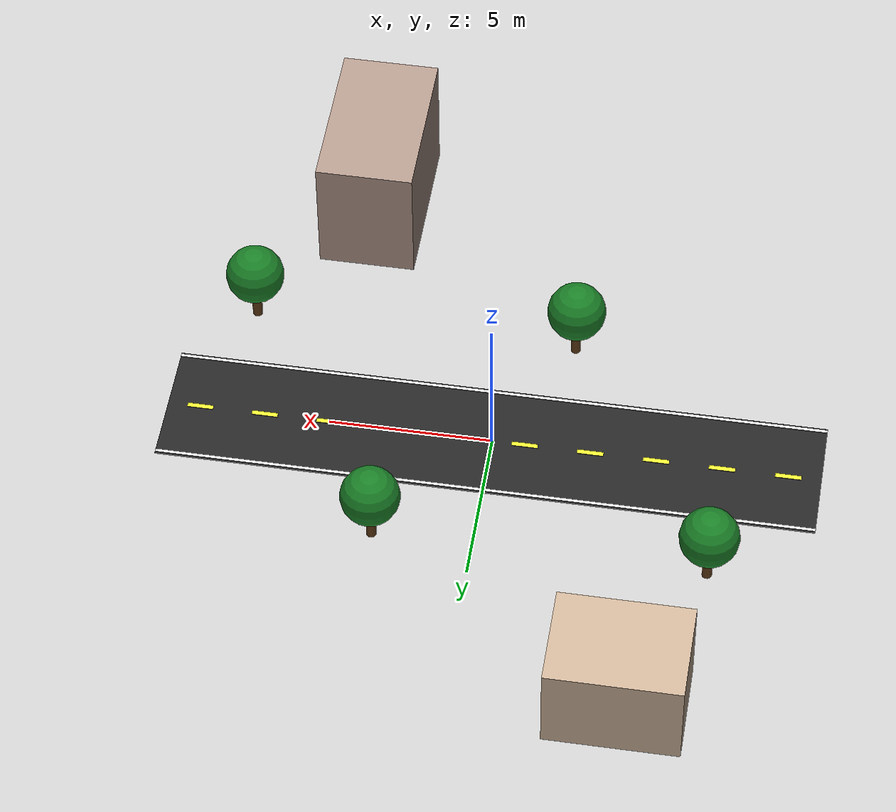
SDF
<sdf version="1.6">
 <world name="road_world">
  <include><uri>model://sun</uri></include>
  <include><uri>model://ground_plane</uri></include>
  <plugin name="gazebo_ros_state" filename="libgazebo_ros_state.so">
   <ros><namespace>/gazebo</namespace></ros>
  </plugin>
  <model name="road">
   <static>true</static>
   <link name="road_link">
    <visual name="road_visual">
     <geometry><box><size>20 4 0.02</size></box></geometry>
     <material><ambient>0.15 0.15 0.15 1</ambient><diffuse>0.15 0.15 0.15 1</diffuse></material>
    </visual>
    <collision name="road_collision"><geometry><box><size>20 4 0.02</size></box></geometry></collision>
   </link>
   <pose>0 0 0.01 0 0 0</pose>
   <model name="road_edge_left">
    <static>true</static>
    <link name="link">
     <visual name="visual">
      <geometry><box><size>20 0.1 0.03</size></box></geometry>
      <material><ambient>0.9 0.9 0.9 1</ambient><diffuse>0.9 0.9 0.9 1</diffuse></material>
     </visual>
    </link>
    <pose>0 1.9 0.02 0 0 0</pose>
   </model>
   <model name="road_edge_right">
    <static>true</static>
    <link name="link">
     <visual name="visual">
      <geometry><box><size>20 0.1 0.03</size></box></geometry>
      <material><ambient>0.9 0.9 0.9 1</ambient><diffuse>0.9 0.9 0.9 1</diffuse></material>
     </visual>
    </link>
    <pose>0 -1.9 0.02 0 0 0</pose>
   </model>
  </model>
  <model name="center_dash_1">
   <static>true</static>
   <link name="link">
    <visual name="visual">
     <geometry><box><size>0.8 0.15 0.03</size></box></geometry>
     <material><ambient>0.95 0.95 0.2 1</ambient><diffuse>0.95 0.95 0.2 1</diffuse></material>
    </visual>
   </link>
   <pose>-9 0 0.02 0 0 0</pose>
  </model>
  <model name="center_dash_2">
   <static>true</static>
   <link name="link">
    <visual name="visual">
     <geometry><box><size>0.8 0.15 0.03</size></box></geometry>
     <material><ambient>0.95 0.95 0.2 1</ambient><diffuse>0.95 0.95 0.2 1</diffuse></material>
    </visual>
   </link>
   <pose>-7 0 0.02 0 0 0</pose>
  </model>
  <model name="center_dash_3">
   <static>true</static>
   <link name="link">
    <visual name="visual">
     <geometry><box><size>0.8 0.15 0.03</size></box></geometry>
     <material><ambient>0.95 0.95 0.2 1</ambient><diffuse>0.95 0.95 0.2 1</diffuse></material>
    </visual>
   </link>
   <pose>-5 0 0.02 0 0 0</pose>
  </model>
  <model name="center_dash_4">
   <static>true</static>
   <link name="link">
    <visual name="visual">
     <geometry><box><size>0.8 0.15 0.03</size></box></geometry>
     <material><ambient>0.95 0.95 0.2 1</ambient><diffuse>0.95 0.95 0.2 1</diffuse></material>
    </visual>
   </link>
   <pose>-3 0 0.02 0 0 0</pose>
  </model>
  <model name="center_dash_5">
   <static>true</static>
   <link name="link">
    <visual name="visual">
     <geometry><box><size>0.8 0.15 0.03</size></box></geometry>
     <material><ambient>0.95 0.95 0.2 1</ambient><diffuse>0.95 0.95 0.2 1</diffuse></material>
    </visual>
   </link>
   <pose>-1 0 0.02 0 0 0</pose>
  </model>
  <model name="center_dash_6">
   <static>true</static>
   <link name="link">
    <visual name="visual">
     <geometry><box><size>0.8 0.15 0.03</size></box></geometry>
     <material><ambient>0.95 0.95 0.2 1</ambient><diffuse>0.95 0.95 0.2 1</diffuse></material>
    </visual>
   </link>
   <pose>1 0 0.02 0 0 0</pose>
  </model>
  <model name="center_dash_7">
   <static>true</static>
   <link name="link">
    <visual name="visual">
     <geometry><box><size>0.8 0.15 0.03</size></box></geometry>
     <material><ambient>0.95 0.95 0.2 1</ambient><diffuse>0.95 0.95 0.2 1</diffuse></material>
    </visual>
   </link>
   <pose>3 0 0.02 0 0 0</pose>
  </model>
  <model name="center_dash_8">
   <static>true</static>
   <link name="link">
    <visual name="visual">
     <geometry><box><size>0.8 0.15 0.03</size></box></geometry>
     <material><ambient>0.95 0.95 0.2 1</ambient><diffuse>0.95 0.95 0.2 1</diffuse></material>
    </visual>
   </link>
   <pose>5 0 0.02 0 0 0</pose>
  </model>
  <model name="center_dash_9">
   <static>true</static>
   <link name="link">
    <visual name="visual">
     <geometry><box><size>0.8 0.15 0.03</size></box></geometry>
     <material><ambient>0.95 0.95 0.2 1</ambient><diffuse>0.95 0.95 0.2 1</diffuse></material>
    </visual>
   </link>
   <pose>7 0 0.02 0 0 0</pose>
  </model>
  <model name="center_dash_10">
   <static>true</static>
   <link name="link">
    <visual name="visual">
     <geometry><box><size>0.8 0.15 0.03</size></box></geometry>
     <material><ambient>0.95 0.95 0.2 1</ambient><diffuse>0.95 0.95 0.2 1</diffuse></material>
    </visual>
   </link>
   <pose>9 0 0.02 0 0 0</pose>
  </model>
  <model name="tree_1">
   <static>true</static>
   <pose>-7 4 0 0 0 0</pose>
   <link name="trunk">
    <visual name="trunk_visual">
     <geometry><cylinder><radius>0.15</radius><length>1.5</length></cylinder></geometry>
     <material><ambient>0.4 0.25 0.1 1</ambient><diffuse>0.4 0.25 0.1 1</diffuse></material>
    </visual>
    <collision name="trunk_collision">
     <geometry><cylinder><radius>0.15</radius><length>1.5</length></cylinder></geometry>
    </collision>
    <pose>0 0 0.75 0 0 0</pose>
   </link>
   <link name="leaves">
    <visual name="leaves_visual">
     <geometry><sphere><radius>0.9</radius></sphere></geometry>
     <material><ambient>0.1 0.5 0.15 1</ambient><diffuse>0.1 0.5 0.15 1</diffuse></material>
    </visual>
    <pose>0 0 1.8 0 0 0</pose>
   </link>
  </model>
  <model name="tree_2">
   <static>true</static>
   <pose>-2 -4 0 0 0 0</pose>
   <link name="trunk">
    <visual name="trunk_visual">
     <geometry><cylinder><radius>0.15</radius><length>1.5</length></cylinder></geometry>
     <material><ambient>0.4 0.25 0.1 1</ambient><diffuse>0.4 0.25 0.1 1</diffuse></material>
    </visual>
    <collision name="trunk_collision">
     <geometry><cylinder><radius>0.15</radius><length>1.5</length></cylinder></geometry>
    </collision>
    <pose>0 0 0.75 0 0 0</pose>
   </link>
   <link name="leaves">
    <visual name="leaves_visual">
     <geometry><sphere><radius>0.9</radius></sphere></geometry>
     <material><ambient>0.1 0.5 0.15 1</ambient><diffuse>0.1 0.5 0.15 1</diffuse></material>
    </visual>
    <pose>0 0 1.8 0 0 0</pose>
   </link>
  </model>
  <model name="tree_3">
   <static>true</static>
   <pose>3 4 0 0 0 0</pose>
   <link name="trunk">
    <visual name="trunk_visual">
     <geometry><cylinder><radius>0.15</radius><length>1.5</length></cylinder></geometry>
     <material><ambient>0.4 0.25 0.1 1</ambient><diffuse>0.4 0.25 0.1 1</diffuse></material>
    </visual>
    <collision name="trunk_collision">
     <geometry><cylinder><radius>0.15</radius><length>1.5</length></cylinder></geometry>
    </collision>
    <pose>0 0 0.75 0 0 0</pose>
   </link>
   <link name="leaves">
    <visual name="leaves_visual">
     <geometry><sphere><radius>0.9</radius></sphere></geometry>
     <material><ambient>0.1 0.5 0.15 1</ambient><diffuse>0.1 0.5 0.15 1</diffuse></material>
    </visual>
    <pose>0 0 1.8 0 0 0</pose>
   </link>
  </model>
  <model name="tree_4">
   <static>true</static>
   <pose>8 -4 0 0 0 0</pose>
   <link name="trunk">
    <visual name="trunk_visual">
     <geometry><cylinder><radius>0.15</radius><length>1.5</length></cylinder></geometry>
     <material><ambient>0.4 0.25 0.1 1</ambient><diffuse>0.4 0.25 0.1 1</diffuse></material>
    </visual>
    <collision name="trunk_collision">
     <geometry><cylinder><radius>0.15</radius><length>1.5</length></cylinder></geometry>
    </collision>
    <pose>0 0 0.75 0 0 0</pose>
   </link>
   <link name="leaves">
    <visual name="leaves_visual">
     <geometry><sphere><radius>0.9</radius></sphere></geometry>
     <material><ambient>0.1 0.5 0.15 1</ambient><diffuse>0.1 0.5 0.15 1</diffuse></material>
    </visual>
    <pose>0 0 1.8 0 0 0</pose>
   </link>
  </model>
  <model name="building_1">
   <static>true</static>
   <pose>-5 9 0 0 0 0</pose>
   <link name="link">
    <visual name="visual">
     <geometry><box><size>4 3 3</size></box></geometry>
     <material><ambient>0.8 0.7 0.6 1</ambient><diffuse>0.8 0.7 0.6 1</diffuse></material>
    </visual>
    <collision name="collision"><geometry><box><size>4 3 3</size></box></geometry></collision>
    <pose>0 0 1.5 0 0 0</pose>
   </link>
  </model>
  <model name="building_2">
   <static>true</static>
   <pose>5 -9 0 0 0 1.57</pose>
   <link name="link">
    <visual name="visual">
     <geometry><box><size>5 3 4</size></box></geometry>
     <material><ambient>0.7 0.6 0.55 1</ambient><diffuse>0.7 0.6 0.55 1</diffuse></material>
    </visual>
    <collision name="collision"><geometry><box><size>5 3 4</size></box></geometry></collision>
    <pose>0 0 2 0 0 0</pose>
   </link>
  </model>
  <scene><ambient>0.6 0.6 0.6 1</ambient><background>0.7 0.8 0.9 1</background><shadows>true</shadows></scene>
  <physics type="ode">
   <max_step_size>0.001</max_step_size>
   <real_time_factor>1</real_time_factor>
   <real_time_update_rate>1000</real_time_update_rate>
  </physics>
 </world>
</sdf>
